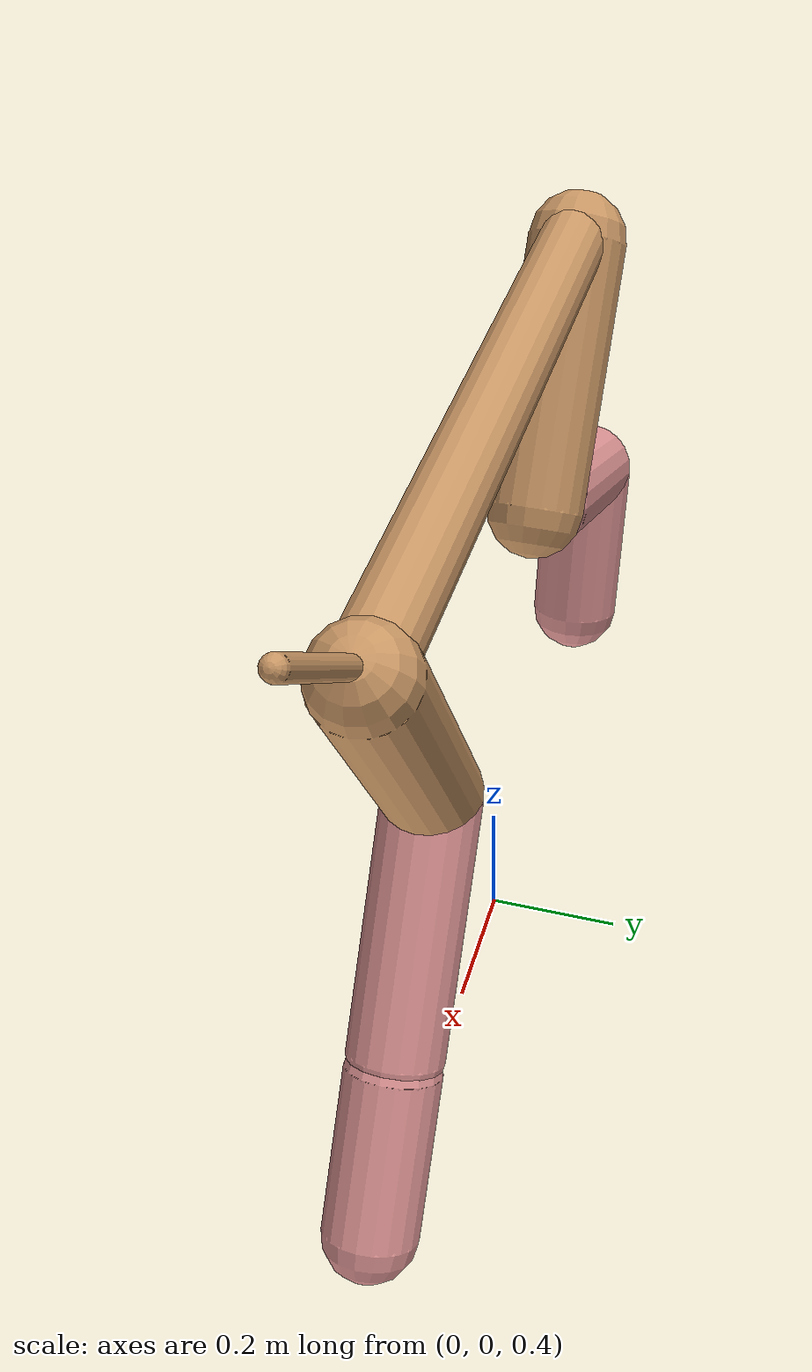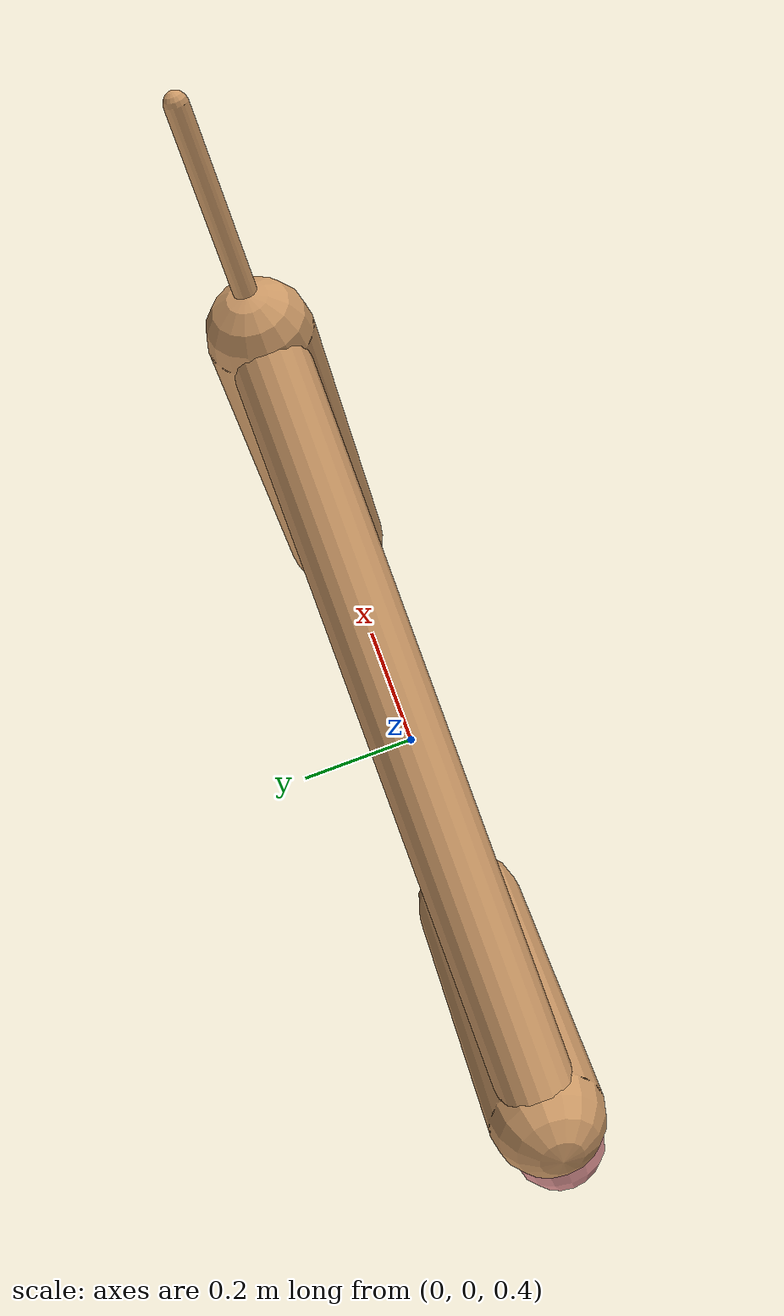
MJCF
<mujoco model="cheetah">
  <compiler angle="radian" coordinate="local" inertiafromgeom="true" settotalmass="14" />
  <default>
    <joint armature=".1" damping=".01" limited="true" solimplimit="0 .8 .03" solreflimit=".02 1" stiffness="8" />
    <geom conaffinity="0" condim="3" contype="1" friction="0.8 .1 .1" rgba="0.8 0.6 .4 1" solimp="0.0 0.8 0.01" solref="0.02 1" />
    <motor ctrllimited="true" ctrlrange="-1 1" />
  </default>
  <size nstack="300000" nuser_geom="1" />
  <option gravity="0 0 -9.81" timestep="0.01" />
  <worldbody>
    <body name="torso" pos="0.0 0.0 1.3513029711563387">
      <joint armature="0" axis="1 0 0" damping="0" limited="false" name="ignorex" pos="0 0 0" stiffness="0" type="slide" />
      <joint armature="0" axis="0 0 1" damping="0" limited="false" name="ignorez" pos="0 0 0" stiffness="0" type="slide" />
      <joint armature="0" axis="0 1 0" damping="0" limited="false" name="ignorey" pos="0 0 0" stiffness="0" type="hinge" />
      <geom fromto="-0.5 0.0 0.0 0.5379318965891225 0.0 0.0" name="torso" size="0.04960156656756344" type="capsule" />
      <geom axisangle="0 1 0 .87" name="head" pos="0.6379318965891224 0.0 0.1" size="0.014865126054842607 0.15" type="capsule" />

      <body name="bthigh" pos="-.5 0 0">
        <joint axis="0 1 0" damping="6" name="bthigh" pos="0 0 0" range="-.52 1.05" stiffness="240" type="hinge" />
        <geom axisangle="0 1 0 -3.8" name="bthigh" pos="0.13359302677821147 0.0 -0.1736709348116749" size="0.07389242258761257 0.2000966604745441" type="capsule" />
        <body name="bshin" pos="0.2271860535564229 0.0 -0.3373418696233498">
          <joint axis="0 1 0" damping="4.5" name="bshin" pos="0 0 0" range="-.785 .785" stiffness="180" type="hinge" />
          <geom axisangle="0 1 0 -2.03" name="bshin" pos="-0.1909792599259199 0.0 -0.09548962996295995" rgba="0.9 0.6 0.6 1" size="0.07389242258761257 0.2069965453184939" type="capsule" />
          <body name="bfoot" pos="-0.3819585198518398 0.0 -0.1909792599259199">
            <joint axis="0 1 0" damping="3" name="bfoot" pos="0 0 0" range="-.4 .785" stiffness="120" type="hinge" />
            <geom axisangle="0 1 0 -.27" name="bfoot" pos="0.04055353883040282 0.0 -0.13112310888496914" rgba="0.9 0.6 0.6 1" size="0.07389242258761257 0.1297178350662562" type="capsule" />
            <inertial mass="10" />
          </body>
        </body>
      </body>
      <body name="fthigh" pos="0.5379318965891224 0.0 0.0">
        <joint axis="0 1 0" damping="4.5" name="fthigh" pos="0 0 0" range="-1.5 0.8" stiffness="180" type="hinge" />
        <geom axisangle="0 1 0 .52" name="fthigh" pos="-0.11565582486240171 0.0 -0.19826712833554577" size="0.06744021118786826 0.22361014138472077" type="capsule" />
        <body name="fshin" pos="-0.23131164972480342 0.0 -0.39653425667109155">
          <joint axis="0 1 0" damping="3" name="fshin" pos="0 0 0" range="-1.2 1.1" stiffness="120" type="hinge" />
          <geom axisangle="0 1 0 -.6" name="fshin" pos="0.10728155246244447 0.0 -0.1485436880249231" rgba="0.9 0.6 0.6 1" size="0.06744021118786826 0.1782156014043639" type="capsule" />
          <body name="ffoot" pos="0.21456310492488895 0.0 -0.2970873760498462">
            <joint axis="0 1 0" damping="1.5" name="ffoot" pos="0 0 0" range="-3.1 -0.3" stiffness="60" type="hinge" />
            <geom axisangle="0 1 0 -.6" name="ffoot" pos="0.07078848515988272 0.0 -0.11011542135981758" rgba="0.9 0.6 0.6 1" size="0.06744021118786826 0.11768954809722147" type="capsule" />
            <inertial mass="10" />
          </body>
        </body>
      </body>
    </body>
  </worldbody>
  <actuator>
    <motor gear="120" joint="bthigh" name="bthigh" />
    <motor gear="90" joint="bshin" name="bshin" />
    <motor gear="60" joint="bfoot" name="bfoot" />
    <motor gear="120" joint="fthigh" name="fthigh" />
    <motor gear="60" joint="fshin" name="fshin" />
    <motor gear="30" joint="ffoot" name="ffoot" />
  </actuator>
</mujoco>
